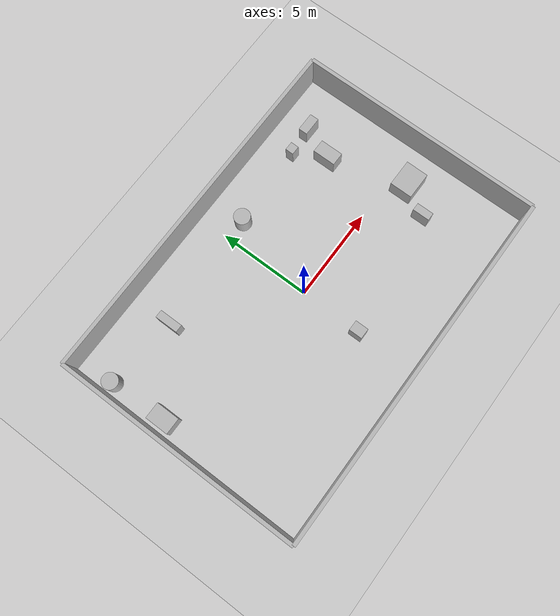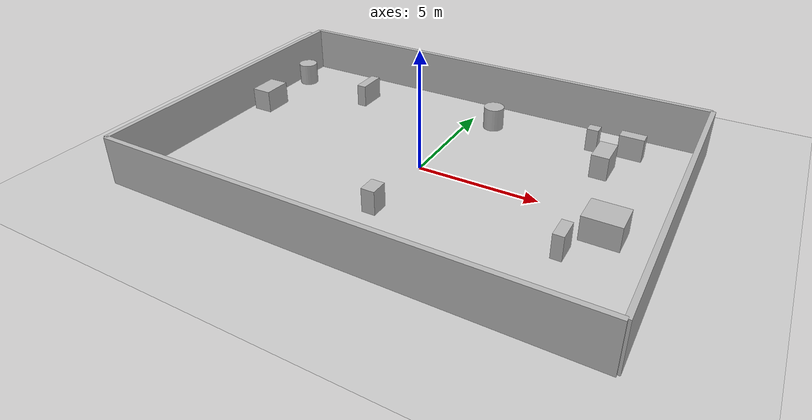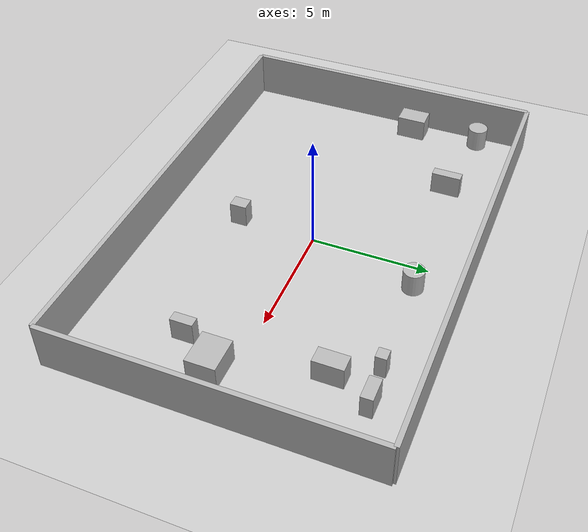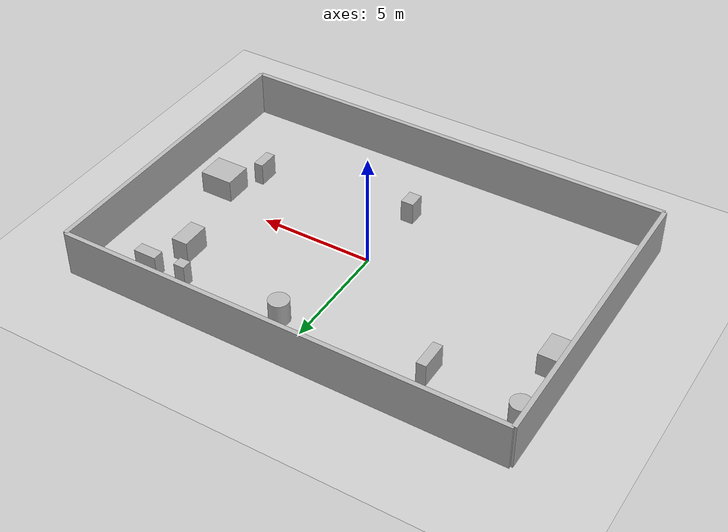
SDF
<?xml version="1.0"?>
<sdf version="1.6">
  <world name="env_31">

    <include><uri>model://ground_plane</uri></include>
    <include><uri>model://sun</uri></include>

    <!-- WALLS -->
    <model name="wall_north"><static>true</static><pose>0 6.680772776789811 1 0 0 0</pose>
      <link name="link"><collision name="collision">
        <geometry><box><size>19.508642860803967 0.2 2</size></box></geometry>
      </collision><visual name="visual">
        <geometry><box><size>19.508642860803967 0.2 2</size></box></geometry>
      </visual></link>
    </model>

    <model name="wall_south"><static>true</static><pose>0 -6.680772776789811 1 0 0 0</pose>
      <link name="link"><collision name="collision">
        <geometry><box><size>19.508642860803967 0.2 2</size></box></geometry>
      </collision><visual name="visual">
        <geometry><box><size>19.508642860803967 0.2 2</size></box></geometry>
      </visual></link>
    </model>

    <model name="wall_east"><static>true</static><pose>9.754321430401983 0 1 0 0 1.57</pose>
      <link name="link"><collision name="collision">
        <geometry><box><size>13.361545553579623 0.2 2</size></box></geometry>
      </collision><visual name="visual">
        <geometry><box><size>13.361545553579623 0.2 2</size></box></geometry>
      </visual></link>
    </model>

    <model name="wall_west"><static>true</static><pose>-9.754321430401983 0 1 0 0 1.57</pose>
      <link name="link"><collision name="collision">
        <geometry><box><size>13.361545553579623 0.2 2</size></box></geometry>
      </collision><visual name="visual">
        <geometry><box><size>13.361545553579623 0.2 2</size></box></geometry>
      </visual></link>
    </model>

    <!-- SENSOR -->

    <model name="lidar_sensor">
      <static>true</static>
      <pose>2.450494893074655 2.5956915030857006 0.4 0 0 0</pose>
      <link name="link">
        <sensor name="lidar" type="ray">
          <pose>0 0 0 0 0 0</pose>
          <visualize>true</visualize>
          <always_on>true</always_on>
          <update_rate>10</update_rate>
          <ray>
            <scan><horizontal>
              <samples>120</samples>
              <resolution>1</resolution>
              <min_angle>-3.14159</min_angle>
              <max_angle>3.14159</max_angle>
            </horizontal></scan>
            <range><min>0.15</min><max>20.0</max><resolution>0.01</resolution></range>
          </ray>
          <plugin name="lidar_plugin" filename="liblidar_plugin.so"/>
        </sensor>
      </link>
    </model>

    <!-- OBSTACLES -->

    <model name="obstacle_0">
      <static>true</static>
      <pose>6.449322630937624 3.2728989562021455 0.5 0 0 0</pose>
      <link name="link">
        <collision name="collision">
          <geometry><box><size>0.71 1.25 1.0</size></box></geometry>
        </collision>
        <visual name="visual">
          <geometry><box><size>0.71 1.25 1.0</size></box></geometry>
        </visual>
      </link>
    </model>

    <model name="obstacle_1">
      <static>true</static>
      <pose>-0.08158117844723556 -3.331915733722153 0.5 0 0 0</pose>
      <link name="link">
        <collision name="collision">
          <geometry><box><size>0.56 0.72 1.0</size></box></geometry>
        </collision>
        <visual name="visual">
          <geometry><box><size>0.56 0.72 1.0</size></box></geometry>
        </visual>
      </link>
    </model>

    <model name="obstacle_2">
      <static>true</static>
      <pose>-8.971529133195316 1.5857649020133895 0.5 0 0 0</pose>
      <link name="link">
        <collision name="collision">
          <geometry><box><size>0.88 1.27 1.0</size></box></geometry>
        </collision>
        <visual name="visual">
          <geometry><box><size>0.88 1.27 1.0</size></box></geometry>
        </visual>
      </link>
    </model>

    <model name="obstacle_3">
      <static>true</static>
      <pose>6.710453872474986 -2.4386288904893725 0.5 0 0 0</pose>
      <link name="link">
        <collision name="collision">
          <geometry><box><size>0.42 0.93 1.0</size></box></geometry>
        </collision>
        <visual name="visual">
          <geometry><box><size>0.42 0.93 1.0</size></box></geometry>
        </visual>
      </link>
    </model>

    <model name="obstacle_4">
      <static>true</static>
      <pose>-5.205141617957717 4.259248868051977 0.5 0 0 0</pose>
      <link name="link">
        <collision name="collision">
          <geometry><box><size>0.42 1.26 1.0</size></box></geometry>
        </collision>
        <visual name="visual">
          <geometry><box><size>0.42 1.26 1.0</size></box></geometry>
        </visual>
      </link>
    </model>

    <model name="obstacle_5">
      <static>true</static>
      <pose>7.716721165571535 -0.8892010680000269 0.5 0 0 0</pose>
      <link name="link">
        <collision name="collision">
          <geometry><box><size>1.46 1.23 1.0</size></box></geometry>
        </collision>
        <visual name="visual">
          <geometry><box><size>1.46 1.23 1.0</size></box></geometry>
        </visual>
      </link>
    </model>

    <model name="obstacle_6">
      <static>true</static>
      <pose>1.1144660692455606 4.682263246005763 0.5 0 0 0</pose>
      <link name="link">
        <collision name="collision">
          <geometry><cylinder><radius>0.44</radius><length>1.0</length></cylinder></geometry>
        </collision>
        <visual name="visual">
          <geometry><cylinder><radius>0.44</radius><length>1.0</length></cylinder></geometry>
        </visual>
      </link>
    </model>

    <model name="obstacle_7">
      <static>true</static>
      <pose>-9.09880386245631 4.67171012584294 0.5 0 0 0</pose>
      <link name="link">
        <collision name="collision">
          <geometry><cylinder><radius>0.43</radius><length>1.0</length></cylinder></geometry>
        </collision>
        <visual name="visual">
          <geometry><cylinder><radius>0.43</radius><length>1.0</length></cylinder></geometry>
        </visual>
      </link>
    </model>

    <model name="obstacle_8">
      <static>true</static>
      <pose>5.55101686917849 4.884018391130808 0.5 0 0 0</pose>
      <link name="link">
        <collision name="collision">
          <geometry><box><size>0.48 0.45 1.0</size></box></geometry>
        </collision>
        <visual name="visual">
          <geometry><box><size>0.48 0.45 1.0</size></box></geometry>
        </visual>
      </link>
    </model>

    <model name="obstacle_9">
      <static>true</static>
      <pose>7.133020623617497 5.001053677004614 0.5 0 0 0</pose>
      <link name="link">
        <collision name="collision">
          <geometry><box><size>1.01 0.49 1.0</size></box></geometry>
        </collision>
        <visual name="visual">
          <geometry><box><size>1.01 0.49 1.0</size></box></geometry>
        </visual>
      </link>
    </model>

  </world>
</sdf>
